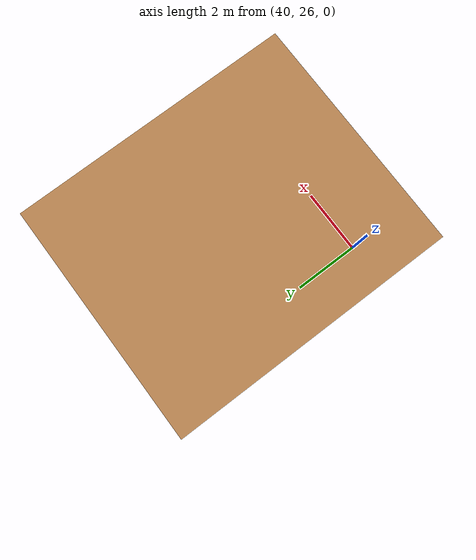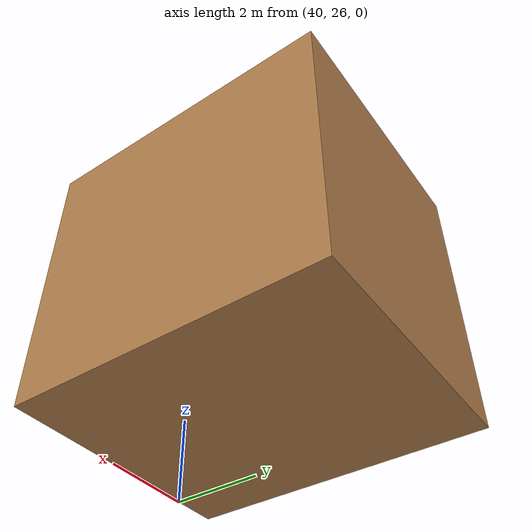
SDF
<?xml version="1.0"?>
<sdf version="1.6">
  <model name="ob_8">
    <pose>0 0 0 0 0 0</pose>
    <static>0</static>
    <link name="element_1_link">
      <pose>41.75 29.25 3 0 0 0</pose>
      <inertial>
        <pose>41.75 29.25 3 0 0 0</pose>
        <mass>1</mass>
        <inertia>
          <ixx>0.36</ixx>
          <ixy>0</ixy>
          <ixz>0</ixz>
          <iyy>1.3225</iyy>
          <iyz>0</iyz>
          <izz>0.49</izz>
        </inertia>
      </inertial>

      <collision name="collision">
        <geometry>
          <box>
            <size>5.5 6.5 6</size>
          </box>
        </geometry>
      </collision>

      <visual name="visual">
        <geometry>
          <box>
            <size>5.5 6.5 6</size>
          </box>
        </geometry>
        <material>
            <script>
              <uri>file://media/materials/scripts/gazebo.material</uri>
              <name>Gazebo/Wood</name>
            </script>
          </material>
      </visual>
    </link>

  </model>
</sdf>
